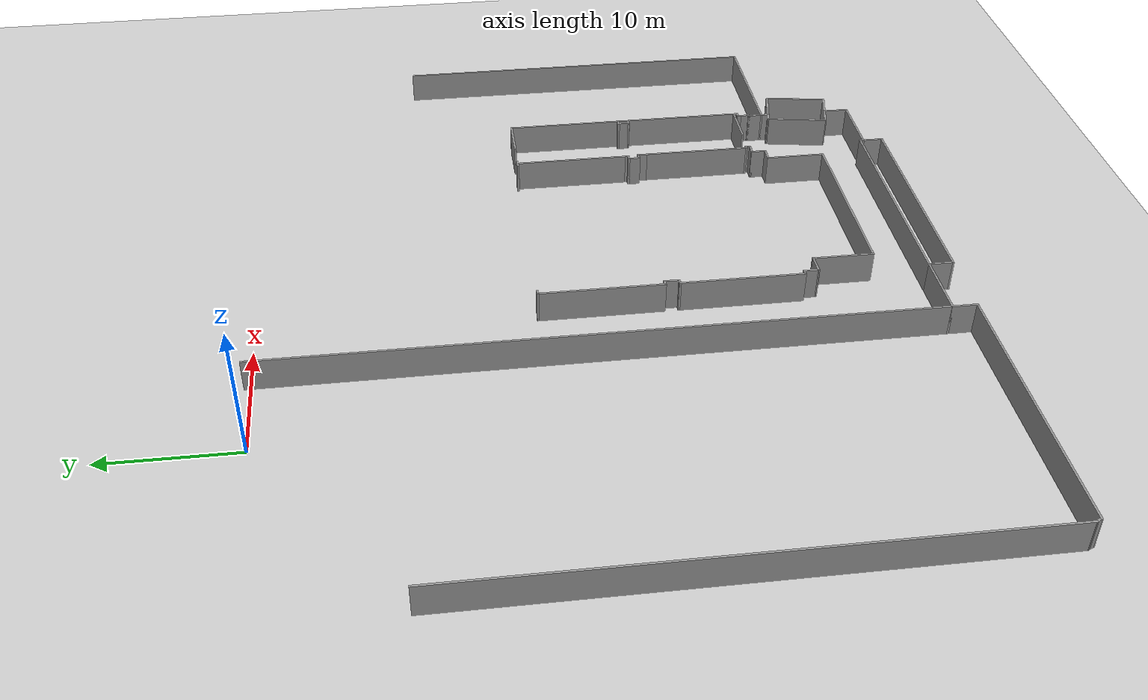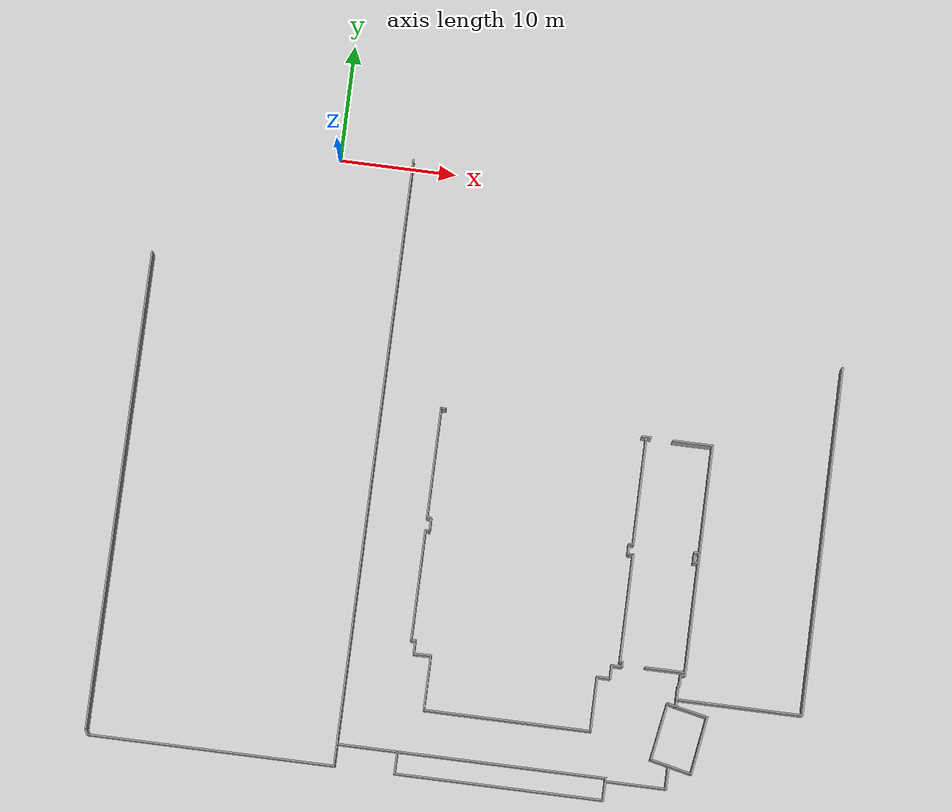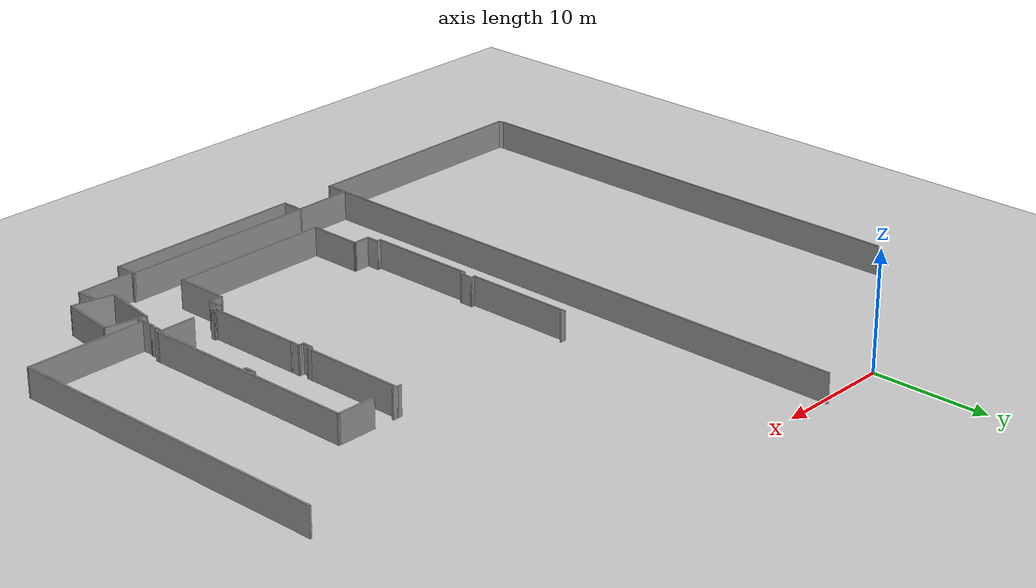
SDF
<sdf version="1.6">
 <world name="default">
  <model name="ground_plane">
   <static>1</static>
   <link name="link">
    <collision name="collision">
     <geometry><plane><normal>0 0 1</normal><size>100 100</size></plane></geometry>
     <surface><friction><ode><mu>100</mu><mu2>50</mu2></ode></friction></surface>
    </collision>
    <visual name="visual">
     <cast_shadows>0</cast_shadows>
     <geometry><plane><normal>0 0 1</normal><size>100 100</size></plane></geometry>
     <material>
      <script><uri>file://media/materials/scripts/gazebo.material</uri><name>Gazebo/Grey</name></script>
     </material>
    </visual>
   </link>
  </model>
  <model name="SEH_double_doors_open">
   <pose>0.441181 0.582592 0 0 -0 0</pose>
   <link name="Wall_0">
    <collision name="Wall_0_Collision">
     <geometry><box><size>41 0.15 2.5</size></box></geometry>
     <pose>0 0 1.25 0 -0 0</pose>
    </collision>
    <visual name="Wall_0_Visual">
     <pose>0 0 1.25 0 -0 0</pose>
     <geometry><box><size>41 0.15 2.5</size></box></geometry>
     <material>
      <script><uri>file://media/materials/scripts/gazebo.material</uri><name>Gazebo/Grey</name></script>
      <ambient>1 1 1 1</ambient>
     </material>
     <meta><layer>0</layer></meta>
    </visual>
    <pose>-15.188 -31.31 0 0 -0 1.5708</pose>
   </link>
   <link name="Wall_101">
    <collision name="Wall_101_Collision">
     <geometry><box><size>19.75 0.15 2.5</size></box></geometry>
     <pose>0 0 1.25 0 -0 0</pose>
    </collision>
    <visual name="Wall_101_Visual">
     <pose>0 0 1.25 0 -0 0</pose>
     <geometry><box><size>19.75 0.15 2.5</size></box></geometry>
     <material>
      <script><uri>file://media/materials/scripts/gazebo.material</uri><name>Gazebo/Grey</name></script>
      <ambient>1 1 1 1</ambient>
     </material>
     <meta><layer>0</layer></meta>
    </visual>
    <pose>34.1091 -31.1312 0 0 -0 1.5708</pose>
   </link>
   <link name="Wall_103">
    <collision name="Wall_103_Collision">
     <geometry><box><size>3.5 0.15 2.5</size></box></geometry>
     <pose>0 0 1.25 0 -0 0</pose>
    </collision>
    <visual name="Wall_103_Visual">
     <pose>0 0 1.25 0 -0 0</pose>
     <geometry><box><size>3.5 0.15 2.5</size></box></geometry>
     <material>
      <script><uri>file://media/materials/scripts/gazebo.material</uri><name>Gazebo/Grey</name></script>
      <ambient>1 1 1 1</ambient>
     </material>
     <meta><layer>0</layer></meta>
    </visual>
    <pose>32.4341 -21.3312 0 0 -0 3.14159</pose>
   </link>
   <link name="Wall_105">
    <collision name="Wall_105_Collision">
     <geometry><box><size>0.5 0.15 2.5</size></box></geometry>
     <pose>0 0 1.25 0 -0 0</pose>
    </collision>
    <visual name="Wall_105_Visual">
     <pose>0 0 1.25 0 -0 0</pose>
     <geometry><box><size>0.5 0.15 2.5</size></box></geometry>
     <material>
      <script><uri>file://media/materials/scripts/gazebo.material</uri><name>Gazebo/Grey</name></script>
      <ambient>1 1 1 1</ambient>
     </material>
     <meta><layer>0</layer></meta>
    </visual>
    <pose>28.6395 -21.3021 0 0 -0 3.14159</pose>
   </link>
   <link name="Wall_106">
    <collision name="Wall_106_Collision">
     <geometry><box><size>9 0.15 2.5</size></box></geometry>
     <pose>0 0 1.25 0 -0 0</pose>
    </collision>
    <visual name="Wall_106_Visual">
     <pose>0 0 1.25 0 -0 0</pose>
     <geometry><box><size>9 0.15 2.5</size></box></geometry>
     <material>
      <script><uri>file://media/materials/scripts/gazebo.material</uri><name>Gazebo/Grey</name></script>
      <ambient>1 1 1 1</ambient>
     </material>
     <meta><layer>0</layer></meta>
    </visual>
    <pose>28.4645 -25.7271 0 0 0 -1.5708</pose>
   </link>
   <link name="Wall_109">
    <collision name="Wall_109_Collision">
     <geometry><box><size>0.5 0.15 2.5</size></box></geometry>
     <pose>0 0 1.25 0 -0 0</pose>
    </collision>
    <visual name="Wall_109_Visual">
     <pose>0 0 1.25 0 -0 0</pose>
     <geometry><box><size>0.5 0.15 2.5</size></box></geometry>
     <material>
      <script><uri>file://media/materials/scripts/gazebo.material</uri><name>Gazebo/Grey</name></script>
      <ambient>1 1 1 1</ambient>
     </material>
     <meta><layer>0</layer></meta>
    </visual>
    <pose>28.4645 -30.3271 0 0 0 -1.5708</pose>
   </link>
   <link name="Wall_110">
    <collision name="Wall_110_Collision">
     <geometry><box><size>0.5 0.15 2.5</size></box></geometry>
     <pose>0 0 1.25 0 -0 0</pose>
    </collision>
    <visual name="Wall_110_Visual">
     <pose>0 0 1.25 0 -0 0</pose>
     <geometry><box><size>0.5 0.15 2.5</size></box></geometry>
     <material>
      <script><uri>file://media/materials/scripts/gazebo.material</uri><name>Gazebo/Grey</name></script>
      <ambient>1 1 1 1</ambient>
     </material>
     <meta><layer>0</layer></meta>
    </visual>
    <pose>28.2895 -30.5021 0 0 -0 3.14159</pose>
   </link>
   <link name="Wall_111">
    <collision name="Wall_111_Collision">
     <geometry><box><size>1 0.15 2.5</size></box></geometry>
     <pose>0 0 1.25 0 -0 0</pose>
    </collision>
    <visual name="Wall_111_Visual">
     <pose>0 0 1.25 0 -0 0</pose>
     <geometry><box><size>1 0.15 2.5</size></box></geometry>
     <material>
      <script><uri>file://media/materials/scripts/gazebo.material</uri><name>Gazebo/Grey</name></script>
      <ambient>1 1 1 1</ambient>
     </material>
     <meta><layer>0</layer></meta>
    </visual>
    <pose>28.1145 -30.9271 0 0 0 -1.5708</pose>
   </link>
   <link name="Wall_112">
    <collision name="Wall_112_Collision">
     <geometry><box><size>0.5 0.15 2.5</size></box></geometry>
     <pose>0 0 1.25 0 -0 0</pose>
    </collision>
    <visual name="Wall_112_Visual">
     <pose>0 0 1.25 0 -0 0</pose>
     <geometry><box><size>0.5 0.15 2.5</size></box></geometry>
     <material>
      <script><uri>file://media/materials/scripts/gazebo.material</uri><name>Gazebo/Grey</name></script>
      <ambient>1 1 1 1</ambient>
     </material>
     <meta><layer>0</layer></meta>
    </visual>
    <pose>28.2895 -31.3521 0 0 -0 0</pose>
   </link>
   <link name="Wall_113">
    <collision name="Wall_113_Collision">
     <geometry><box><size>0.25 0.15 2.5</size></box></geometry>
     <pose>0 0 1.25 0 -0 0</pose>
    </collision>
    <visual name="Wall_113_Visual">
     <pose>0 0 1.25 0 -0 0</pose>
     <geometry><box><size>0.25 0.15 2.5</size></box></geometry>
     <material>
      <script><uri>file://media/materials/scripts/gazebo.material</uri><name>Gazebo/Grey</name></script>
      <ambient>1 1 1 1</ambient>
     </material>
     <meta><layer>0</layer></meta>
    </visual>
    <pose>28.5145 -31.3521 0 0 -0 0</pose>
   </link>
   <link name="Wall_114">
    <collision name="Wall_114_Collision">
     <geometry><box><size>0.931161 0.15 2.5</size></box></geometry>
     <pose>0 0 1.25 0 -0 0</pose>
    </collision>
    <visual name="Wall_114_Visual">
     <pose>0 0 1.25 0 -0 0</pose>
     <geometry><box><size>0.931161 0.15 2.5</size></box></geometry>
     <material>
      <script><uri>file://media/materials/scripts/gazebo.material</uri><name>Gazebo/Grey</name></script>
      <ambient>1 1 1 1</ambient>
     </material>
     <meta><layer>0</layer></meta>
    </visual>
    <pose>28.5648 -31.7427 0 0 0 -1.56992</pose>
   </link>
   <link name="Wall_116">
    <collision name="Wall_116_Collision">
     <geometry><box><size>0.5 0.15 2.5</size></box></geometry>
     <pose>0 0 1.25 0 -0 0</pose>
    </collision>
    <visual name="Wall_116_Visual">
     <pose>0 0 1.25 0 -0 0</pose>
     <geometry><box><size>0.5 0.15 2.5</size></box></geometry>
     <material>
      <script><uri>file://media/materials/scripts/gazebo.material</uri><name>Gazebo/Grey</name></script>
      <ambient>1 1 1 1</ambient>
     </material>
     <meta><layer>0</layer></meta>
    </visual>
    <pose>33.8845 -30.5093 0 0 -0 3.14159</pose>
   </link>
   <link name="Wall_117">
    <collision name="Wall_117_Collision">
     <geometry><box><size>1 0.15 2.5</size></box></geometry>
     <pose>0 0 1.25 0 -0 0</pose>
    </collision>
    <visual name="Wall_117_Visual">
     <pose>0 0 1.25 0 -0 0</pose>
     <geometry><box><size>1 0.15 2.5</size></box></geometry>
     <material>
      <script><uri>file://media/materials/scripts/gazebo.material</uri><name>Gazebo/Grey</name></script>
      <ambient>1 1 1 1</ambient>
     </material>
     <meta><layer>0</layer></meta>
    </visual>
    <pose>33.7095 -30.9343 0 0 0 -1.5708</pose>
   </link>
   <link name="Wall_118">
    <collision name="Wall_118_Collision">
     <geometry><box><size>0.5 0.15 2.5</size></box></geometry>
     <pose>0 0 1.25 0 -0 0</pose>
    </collision>
    <visual name="Wall_118_Visual">
     <pose>0 0 1.25 0 -0 0</pose>
     <geometry><box><size>0.5 0.15 2.5</size></box></geometry>
     <material>
      <script><uri>file://media/materials/scripts/gazebo.material</uri><name>Gazebo/Grey</name></script>
      <ambient>1 1 1 1</ambient>
     </material>
     <meta><layer>0</layer></meta>
    </visual>
    <pose>33.8845 -31.3593 0 0 -0 0</pose>
   </link>
   <link name="Wall_120">
    <collision name="Wall_120_Collision">
     <geometry><box><size>50.25 0.15 2.5</size></box></geometry>
     <pose>0 0 1.25 0 -0 0</pose>
    </collision>
    <visual name="Wall_120_Visual">
     <pose>0 0 1.25 0 -0 0</pose>
     <geometry><box><size>50.25 0.15 2.5</size></box></geometry>
     <material>
      <script><uri>file://media/materials/scripts/gazebo.material</uri><name>Gazebo/Grey</name></script>
      <ambient>1 1 1 1</ambient>
     </material>
     <meta><layer>0</layer></meta>
    </visual>
    <pose>5.8537 -25.2205 0 0 -0 1.5708</pose>
   </link>
   <link name="Wall_156">
    <collision name="Wall_156_Collision">
     <geometry><box><size>0.5 0.15 2.5</size></box></geometry>
     <pose>0 0 1.25 0 -0 0</pose>
    </collision>
    <visual name="Wall_156_Visual">
     <pose>0 0 1.25 0 -0 0</pose>
     <geometry><box><size>0.5 0.15 2.5</size></box></geometry>
     <material>
      <script><uri>file://media/materials/scripts/gazebo.material</uri><name>Gazebo/Grey</name></script>
      <ambient>1 1 1 1</ambient>
     </material>
     <meta><layer>0</layer></meta>
    </visual>
    <pose>28.2895 -21.3021 0 0 -0 3.14159</pose>
   </link>
   <link name="Wall_160">
    <collision name="Wall_160_Collision">
     <geometry><box><size>0.5 0.15 2.5</size></box></geometry>
     <pose>0 0 1.25 0 -0 0</pose>
    </collision>
    <visual name="Wall_160_Visual">
     <pose>0 0 1.25 0 -0 0</pose>
     <geometry><box><size>0.5 0.15 2.5</size></box></geometry>
     <material>
      <script><uri>file://media/materials/scripts/gazebo.material</uri><name>Gazebo/Grey</name></script>
      <ambient>1 1 1 1</ambient>
     </material>
     <meta><layer>0</layer></meta>
    </visual>
    <pose>11.0895 -21.0521 0 0 -0 3.14159</pose>
   </link>
   <link name="Wall_161">
    <collision name="Wall_161_Collision">
     <geometry><box><size>9.5 0.15 2.5</size></box></geometry>
     <pose>0 0 1.25 0 -0 0</pose>
    </collision>
    <visual name="Wall_161_Visual">
     <pose>0 0 1.25 0 -0 0</pose>
     <geometry><box><size>9.5 0.15 2.5</size></box></geometry>
     <material>
      <script><uri>file://media/materials/scripts/gazebo.material</uri><name>Gazebo/Grey</name></script>
      <ambient>1 1 1 1</ambient>
     </material>
     <meta><layer>0</layer></meta>
    </visual>
    <pose>10.9145 -25.7271 0 0 0 -1.5708</pose>
   </link>
   <link name="Wall_163">
    <collision name="Wall_163_Collision">
     <geometry><box><size>0.5 0.15 2.5</size></box></geometry>
     <pose>0 0 1.25 0 -0 0</pose>
    </collision>
    <visual name="Wall_163_Visual">
     <pose>0 0 1.25 0 -0 0</pose>
     <geometry><box><size>0.5 0.15 2.5</size></box></geometry>
     <material>
      <script><uri>file://media/materials/scripts/gazebo.material</uri><name>Gazebo/Grey</name></script>
      <ambient>1 1 1 1</ambient>
     </material>
     <meta><layer>0</layer></meta>
    </visual>
    <pose>11.0895 -30.4021 0 0 -0 0</pose>
   </link>
   <link name="Wall_164">
    <collision name="Wall_164_Collision">
     <geometry><box><size>1.25 0.15 2.5</size></box></geometry>
     <pose>0 0 1.25 0 -0 0</pose>
    </collision>
    <visual name="Wall_164_Visual">
     <pose>0 0 1.25 0 -0 0</pose>
     <geometry><box><size>1.25 0.15 2.5</size></box></geometry>
     <material>
      <script><uri>file://media/materials/scripts/gazebo.material</uri><name>Gazebo/Grey</name></script>
      <ambient>1 1 1 1</ambient>
     </material>
     <meta><layer>0</layer></meta>
    </visual>
    <pose>11.2645 -30.9521 0 0 0 -1.5708</pose>
   </link>
   <link name="Wall_165">
    <collision name="Wall_165_Collision">
     <geometry><box><size>0.5 0.15 2.5</size></box></geometry>
     <pose>0 0 1.25 0 -0 0</pose>
    </collision>
    <visual name="Wall_165_Visual">
     <pose>0 0 1.25 0 -0 0</pose>
     <geometry><box><size>0.5 0.15 2.5</size></box></geometry>
     <material>
      <script><uri>file://media/materials/scripts/gazebo.material</uri><name>Gazebo/Grey</name></script>
      <ambient>1 1 1 1</ambient>
     </material>
     <meta><layer>0</layer></meta>
    </visual>
    <pose>11.0895 -31.5021 0 0 -0 3.14159</pose>
   </link>
   <link name="Wall_166">
    <collision name="Wall_166_Collision">
     <geometry><box><size>9.5 0.15 2.5</size></box></geometry>
     <pose>0 0 1.25 0 -0 0</pose>
    </collision>
    <visual name="Wall_166_Visual">
     <pose>0 0 1.25 0 -0 0</pose>
     <geometry><box><size>9.5 0.15 2.5</size></box></geometry>
     <material>
      <script><uri>file://media/materials/scripts/gazebo.material</uri><name>Gazebo/Grey</name></script>
      <ambient>1 1 1 1</ambient>
     </material>
     <meta><layer>0</layer></meta>
    </visual>
    <pose>10.9145 -36.1771 0 0 0 -1.5708</pose>
   </link>
   <link name="Wall_167">
    <collision name="Wall_167_Collision">
     <geometry><box><size>0.5 0.15 2.5</size></box></geometry>
     <pose>0 0 1.25 0 -0 0</pose>
    </collision>
    <visual name="Wall_167_Visual">
     <pose>0 0 1.25 0 -0 0</pose>
     <geometry><box><size>0.5 0.15 2.5</size></box></geometry>
     <material>
      <script><uri>file://media/materials/scripts/gazebo.material</uri><name>Gazebo/Grey</name></script>
      <ambient>1 1 1 1</ambient>
     </material>
     <meta><layer>0</layer></meta>
    </visual>
    <pose>11.0895 -40.8521 0 0 -0 0</pose>
   </link>
   <link name="Wall_168">
    <collision name="Wall_168_Collision">
     <geometry><box><size>1.25 0.15 2.5</size></box></geometry>
     <pose>0 0 1.25 0 -0 0</pose>
    </collision>
    <visual name="Wall_168_Visual">
     <pose>0 0 1.25 0 -0 0</pose>
     <geometry><box><size>1.25 0.15 2.5</size></box></geometry>
     <material>
      <script><uri>file://media/materials/scripts/gazebo.material</uri><name>Gazebo/Grey</name></script>
      <ambient>1 1 1 1</ambient>
     </material>
     <meta><layer>0</layer></meta>
    </visual>
    <pose>11.2645 -41.4021 0 0 0 -1.5708</pose>
   </link>
   <link name="Wall_169">
    <collision name="Wall_169_Collision">
     <geometry><box><size>1.60081 0.15 2.5</size></box></geometry>
     <pose>0 0 1.25 0 -0 0</pose>
    </collision>
    <visual name="Wall_169_Visual">
     <pose>0 0 1.25 0 -0 0</pose>
     <geometry><box><size>1.60081 0.15 2.5</size></box></geometry>
     <material>
      <script><uri>file://media/materials/scripts/gazebo.material</uri><name>Gazebo/Grey</name></script>
      <ambient>1 1 1 1</ambient>
     </material>
     <meta><layer>0</layer></meta>
    </visual>
    <pose>11.9898 -41.9427 0 0 -0 0.012986</pose>
   </link>
   <link name="Wall_185">
    <collision name="Wall_185_Collision">
     <geometry><box><size>17.75 0.15 2.5</size></box></geometry>
     <pose>0 0 1.25 0 -0 0</pose>
    </collision>
    <visual name="Wall_185_Visual">
     <pose>0 0 1.25 0 -0 0</pose>
     <geometry><box><size>17.75 0.15 2.5</size></box></geometry>
     <material>
      <script><uri>file://media/materials/scripts/gazebo.material</uri><name>Gazebo/Grey</name></script>
      <ambient>1 1 1 1</ambient>
     </material>
     <meta><layer>0</layer></meta>
    </visual>
    <pose>19.7537 -50.2705 0 0 -0 0</pose>
   </link>
   <link name="Wall_186">
    <collision name="Wall_186_Collision">
     <geometry><box><size>0.4 0.15 2.5</size></box></geometry>
     <pose>0 0 1.25 0 -0 0</pose>
    </collision>
    <visual name="Wall_186_Visual">
     <pose>0 0 1.25 0 -0 0</pose>
     <geometry><box><size>0.4 0.15 2.5</size></box></geometry>
     <material>
      <script><uri>file://media/materials/scripts/gazebo.material</uri><name>Gazebo/Grey</name></script>
      <ambient>1 1 1 1</ambient>
     </material>
     <meta><layer>0</layer></meta>
    </visual>
    <pose>28.5537 -50.3955 0 0 0 -1.5708</pose>
   </link>
   <link name="Wall_38">
    <collision name="Wall_38_Collision">
     <geometry><box><size>29.75 0.15 2.5</size></box></geometry>
     <pose>0 0 1.25 0 -0 0</pose>
    </collision>
    <visual name="Wall_38_Visual">
     <pose>0 0 1.25 0 -0 0</pose>
     <geometry><box><size>29.75 0.15 2.5</size></box></geometry>
     <material>
      <script><uri>file://media/materials/scripts/gazebo.material</uri><name>Gazebo/Grey</name></script>
      <ambient>1 1 1 1</ambient>
     </material>
     <meta><layer>0</layer></meta>
    </visual>
    <pose>44.2591 -28.1812 0 0 0 -1.5708</pose>
   </link>
   <link name="Wall_39">
    <collision name="Wall_39_Collision">
     <geometry><box><size>10.75 0.15 2.5</size></box></geometry>
     <pose>0 0 1.25 0 -0 0</pose>
    </collision>
    <visual name="Wall_39_Visual">
     <pose>0 0 1.25 0 -0 0</pose>
     <geometry><box><size>10.75 0.15 2.5</size></box></geometry>
     <material>
      <script><uri>file://media/materials/scripts/gazebo.material</uri><name>Gazebo/Grey</name></script>
      <ambient>1 1 1 1</ambient>
     </material>
     <meta><layer>0</layer></meta>
    </visual>
    <pose>38.9591 -42.9812 0 0 -0 3.14159</pose>
   </link>
   <link name="Wall_41">
    <collision name="Wall_41_Collision">
     <geometry><box><size>0.75 0.15 2.5</size></box></geometry>
     <pose>0 0 1.25 0 -0 0</pose>
    </collision>
    <visual name="Wall_41_Visual">
     <pose>0 0 1.25 0 -0 0</pose>
     <geometry><box><size>0.75 0.15 2.5</size></box></geometry>
     <material>
      <script><uri>file://media/materials/scripts/gazebo.material</uri><name>Gazebo/Grey</name></script>
      <ambient>1 1 1 1</ambient>
     </material>
     <meta><layer>0</layer></meta>
    </visual>
    <pose>33.6591 -43.2812 0 0 0 -1.5708</pose>
   </link>
   <link name="Wall_44">
    <collision name="Wall_44_Collision">
     <geometry><box><size>2.92833 0.15 2.5</size></box></geometry>
     <pose>0 0 1.25 0 -0 0</pose>
    </collision>
    <visual name="Wall_44_Visual">
     <pose>0 0 1.25 0 -0 0</pose>
     <geometry><box><size>2.92833 0.15 2.5</size></box></geometry>
     <material>
      <script><uri>file://media/materials/scripts/gazebo.material</uri><name>Gazebo/Grey</name></script>
      <ambient>1 1 1 1</ambient>
     </material>
     <meta><layer>0</layer></meta>
    </visual>
    <pose>35.0195 -43.8621 0 0 -0 2.938</pose>
   </link>
   <link name="Wall_47">
    <collision name="Wall_47_Collision">
     <geometry><box><size>2 0.15 2.5</size></box></geometry>
     <pose>0 0 1.25 0 -0 0</pose>
    </collision>
    <visual name="Wall_47_Visual">
     <pose>0 0 1.25 0 -0 0</pose>
     <geometry><box><size>2 0.15 2.5</size></box></geometry>
     <material>
      <script><uri>file://media/materials/scripts/gazebo.material</uri><name>Gazebo/Grey</name></script>
      <ambient>1 1 1 1</ambient>
     </material>
     <meta><layer>0</layer></meta>
    </visual>
    <pose>33.6537 -49.5955 0 0 0 -1.5708</pose>
   </link>
   <link name="Wall_48">
    <collision name="Wall_48_Collision">
     <geometry><box><size>5.25 0.15 2.5</size></box></geometry>
     <pose>0 0 1.25 0 -0 0</pose>
    </collision>
    <visual name="Wall_48_Visual">
     <pose>0 0 1.25 0 -0 0</pose>
     <geometry><box><size>5.25 0.15 2.5</size></box></geometry>
     <material>
      <script><uri>file://media/materials/scripts/gazebo.material</uri><name>Gazebo/Grey</name></script>
      <ambient>1 1 1 1</ambient>
     </material>
     <meta><layer>0</layer></meta>
    </visual>
    <pose>31.1037 -50.5205 0 0 -0 3.14159</pose>
   </link>
   <link name="Wall_49">
    <collision name="Wall_49_Collision">
     <geometry><box><size>1.75 0.15 2.5</size></box></geometry>
     <pose>0 0 1.25 0 -0 0</pose>
    </collision>
    <visual name="Wall_49_Visual">
     <pose>0 0 1.25 0 -0 0</pose>
     <geometry><box><size>1.75 0.15 2.5</size></box></geometry>
     <material>
      <script><uri>file://media/materials/scripts/gazebo.material</uri><name>Gazebo/Grey</name></script>
      <ambient>1 1 1 1</ambient>
     </material>
     <meta><layer>0</layer></meta>
    </visual>
    <pose>28.5537 -51.3205 0 0 0 -1.5708</pose>
   </link>
   <link name="Wall_50">
    <collision name="Wall_50_Collision">
     <geometry><box><size>17.75 0.15 2.5</size></box></geometry>
     <pose>0 0 1.25 0 -0 0</pose>
    </collision>
    <visual name="Wall_50_Visual">
     <pose>0 0 1.25 0 -0 0</pose>
     <geometry><box><size>17.75 0.15 2.5</size></box></geometry>
     <material>
      <script><uri>file://media/materials/scripts/gazebo.material</uri><name>Gazebo/Grey</name></script>
      <ambient>1 1 1 1</ambient>
     </material>
     <meta><layer>0</layer></meta>
    </visual>
    <pose>19.7537 -52.1205 0 0 -0 3.14159</pose>
   </link>
   <link name="Wall_51">
    <collision name="Wall_51_Collision">
     <geometry><box><size>2 0.15 2.5</size></box></geometry>
     <pose>0 0 1.25 0 -0 0</pose>
    </collision>
    <visual name="Wall_51_Visual">
     <pose>0 0 1.25 0 -0 0</pose>
     <geometry><box><size>2 0.15 2.5</size></box></geometry>
     <material>
      <script><uri>file://media/materials/scripts/gazebo.material</uri><name>Gazebo/Grey</name></script>
      <ambient>1 1 1 1</ambient>
     </material>
     <meta><layer>0</layer></meta>
    </visual>
    <pose>10.9537 -51.1955 0 0 -0 1.5708</pose>
   </link>
   <link name="Wall_52">
    <collision name="Wall_52_Collision">
     <geometry><box><size>5.25 0.15 2.5</size></box></geometry>
     <pose>0 0 1.25 0 -0 0</pose>
    </collision>
    <visual name="Wall_52_Visual">
     <pose>0 0 1.25 0 -0 0</pose>
     <geometry><box><size>5.25 0.15 2.5</size></box></geometry>
     <material>
      <script><uri>file://media/materials/scripts/gazebo.material</uri><name>Gazebo/Grey</name></script>
      <ambient>1 1 1 1</ambient>
     </material>
     <meta><layer>0</layer></meta>
    </visual>
    <pose>8.4037 -50.2705 0 0 -0 3.14159</pose>
   </link>
   <link name="Wall_53">
    <collision name="Wall_53_Collision">
     <geometry><box><size>2 0.15 2.5</size></box></geometry>
     <pose>0 0 1.25 0 -0 0</pose>
    </collision>
    <visual name="Wall_53_Visual">
     <pose>0 0 1.25 0 -0 0</pose>
     <geometry><box><size>2 0.15 2.5</size></box></geometry>
     <material>
      <script><uri>file://media/materials/scripts/gazebo.material</uri><name>Gazebo/Grey</name></script>
      <ambient>1 1 1 1</ambient>
     </material>
     <meta><layer>0</layer></meta>
    </visual>
    <pose>5.8537 -51.1955 0 0 0 -1.5708</pose>
   </link>
   <link name="Wall_54">
    <collision name="Wall_54_Collision">
     <geometry><box><size>21 0.15 2.5</size></box></geometry>
     <pose>0 0 1.25 0 -0 0</pose>
    </collision>
    <visual name="Wall_54_Visual">
     <pose>0 0 1.25 0 -0 0</pose>
     <geometry><box><size>21 0.15 2.5</size></box></geometry>
     <material>
      <script><uri>file://media/materials/scripts/gazebo.material</uri><name>Gazebo/Grey</name></script>
      <ambient>1 1 1 1</ambient>
     </material>
     <meta><layer>0</layer></meta>
    </visual>
    <pose>-4.5713 -52.1205 0 0 -0 3.14159</pose>
   </link>
   <link name="Wall_55">
    <collision name="Wall_55_Collision">
     <geometry><box><size>0.580586 0.15 2.5</size></box></geometry>
     <pose>0 0 1.25 0 -0 0</pose>
    </collision>
    <visual name="Wall_55_Visual">
     <pose>0 0 1.25 0 -0 0</pose>
     <geometry><box><size>0.580586 0.15 2.5</size></box></geometry>
     <material>
      <script><uri>file://media/materials/scripts/gazebo.material</uri><name>Gazebo/Grey</name></script>
      <ambient>1 1 1 1</ambient>
     </material>
     <meta><layer>0</layer></meta>
    </visual>
    <pose>-15.0922 -51.9278 0 0 -0 2.03226</pose>
   </link>
   <link name="Wall_63">
    <collision name="Wall_63_Collision">
     <geometry><box><size>0.879816 0.15 2.5</size></box></geometry>
     <pose>0 0 1.25 0 -0 0</pose>
    </collision>
    <visual name="Wall_63_Visual">
     <pose>0 0 1.25 0 -0 0</pose>
     <geometry><box><size>0.879816 0.15 2.5</size></box></geometry>
     <material>
      <script><uri>file://media/materials/scripts/gazebo.material</uri><name>Gazebo/Grey</name></script>
      <ambient>1 1 1 1</ambient>
     </material>
     <meta><layer>0</layer></meta>
    </visual>
    <pose>33.3039 -43.4973 0 0 0 -0.231943</pose>
   </link>
   <link name="Wall_67">
    <collision name="Wall_67_Collision">
     <geometry><box><size>5.05274 0.15 2.5</size></box></geometry>
     <pose>0 0 1.25 0 -0 0</pose>
    </collision>
    <visual name="Wall_67_Visual">
     <pose>0 0 1.25 0 -0 0</pose>
     <geometry><box><size>5.05274 0.15 2.5</size></box></geometry>
     <material>
      <script><uri>file://media/materials/scripts/gazebo.material</uri><name>Gazebo/Grey</name></script>
      <ambient>1 1 1 1</ambient>
     </material>
     <meta><layer>0</layer></meta>
    </visual>
    <pose>32.5371 -45.83 0 0 0 -1.73954</pose>
   </link>
   <link name="Wall_70">
    <collision name="Wall_70_Collision">
     <geometry><box><size>3.72754 0.15 2.5</size></box></geometry>
     <pose>0 0 1.25 0 -0 0</pose>
    </collision>
    <visual name="Wall_70_Visual">
     <pose>0 0 1.25 0 -0 0</pose>
     <geometry><box><size>3.72754 0.15 2.5</size></box></geometry>
     <material>
      <script><uri>file://media/materials/scripts/gazebo.material</uri><name>Gazebo/Grey</name></script>
      <ambient>1 1 1 1</ambient>
     </material>
     <meta><layer>0</layer></meta>
    </visual>
    <pose>33.8718 -48.6336 0 0 -0 2.92349</pose>
   </link>
   <link name="Wall_72">
    <collision name="Wall_72_Collision">
     <geometry><box><size>5.08683 0.15 2.5</size></box></geometry>
     <pose>0 0 1.25 0 -0 0</pose>
    </collision>
    <visual name="Wall_72_Visual">
     <pose>0 0 1.25 0 -0 0</pose>
     <geometry><box><size>5.08683 0.15 2.5</size></box></geometry>
     <material>
      <script><uri>file://media/materials/scripts/gazebo.material</uri><name>Gazebo/Grey</name></script>
      <ambient>1 1 1 1</ambient>
     </material>
     <meta><layer>0</layer></meta>
    </visual>
    <pose>35.9991 -46.5818 0 0 0 -1.72573</pose>
   </link>
   <link name="Wall_74">
    <collision name="Wall_74_Collision">
     <geometry><box><size>4.75 0.15 2.5</size></box></geometry>
     <pose>0 0 1.25 0 -0 0</pose>
    </collision>
    <visual name="Wall_74_Visual">
     <pose>0 0 1.25 0 -0 0</pose>
     <geometry><box><size>4.75 0.15 2.5</size></box></geometry>
     <material>
      <script><uri>file://media/materials/scripts/gazebo.material</uri><name>Gazebo/Grey</name></script>
      <ambient>1 1 1 1</ambient>
     </material>
     <meta><layer>0</layer></meta>
    </visual>
    <pose>12.7151 -44.2332 0 0 0 -1.5708</pose>
   </link>
   <link name="Wall_75">
    <collision name="Wall_75_Collision">
     <geometry><box><size>14.25 0.15 2.5</size></box></geometry>
     <pose>0 0 1.25 0 -0 0</pose>
    </collision>
    <visual name="Wall_75_Visual">
     <pose>0 0 1.25 0 -0 0</pose>
     <geometry><box><size>14.25 0.15 2.5</size></box></geometry>
     <material>
      <script><uri>file://media/materials/scripts/gazebo.material</uri><name>Gazebo/Grey</name></script>
      <ambient>1 1 1 1</ambient>
     </material>
     <meta><layer>0</layer></meta>
    </visual>
    <pose>19.7651 -46.5332 0 0 -0 0</pose>
   </link>
   <link name="Wall_76">
    <collision name="Wall_76_Collision">
     <geometry><box><size>4.75 0.15 2.5</size></box></geometry>
     <pose>0 0 1.25 0 -0 0</pose>
    </collision>
    <visual name="Wall_76_Visual">
     <pose>0 0 1.25 0 -0 0</pose>
     <geometry><box><size>4.75 0.15 2.5</size></box></geometry>
     <material>
      <script><uri>file://media/materials/scripts/gazebo.material</uri><name>Gazebo/Grey</name></script>
      <ambient>1 1 1 1</ambient>
     </material>
     <meta><layer>0</layer></meta>
    </visual>
    <pose>26.8151 -44.2332 0 0 -0 1.5708</pose>
   </link>
   <link name="Wall_77">
    <collision name="Wall_77_Collision">
     <geometry><box><size>1.25 0.15 2.5</size></box></geometry>
     <pose>0 0 1.25 0 -0 0</pose>
    </collision>
    <visual name="Wall_77_Visual">
     <pose>0 0 1.25 0 -0 0</pose>
     <geometry><box><size>1.25 0.15 2.5</size></box></geometry>
     <material>
      <script><uri>file://media/materials/scripts/gazebo.material</uri><name>Gazebo/Grey</name></script>
      <ambient>1 1 1 1</ambient>
     </material>
     <meta><layer>0</layer></meta>
    </visual>
    <pose>27.3651 -41.9332 0 0 -0 0</pose>
   </link>
   <link name="Wall_80">
    <collision name="Wall_80_Collision">
     <geometry><box><size>1.25 0.15 2.5</size></box></geometry>
     <pose>0 0 1.25 0 -0 0</pose>
    </collision>
    <visual name="Wall_80_Visual">
     <pose>0 0 1.25 0 -0 0</pose>
     <geometry><box><size>1.25 0.15 2.5</size></box></geometry>
     <material>
      <script><uri>file://media/materials/scripts/gazebo.material</uri><name>Gazebo/Grey</name></script>
      <ambient>1 1 1 1</ambient>
     </material>
     <meta><layer>0</layer></meta>
    </visual>
    <pose>27.9151 -41.3832 0 0 -0 1.5708</pose>
   </link>
   <link name="Wall_81">
    <collision name="Wall_81_Collision">
     <geometry><box><size>1 0.15 2.5</size></box></geometry>
     <pose>0 0 1.25 0 -0 0</pose>
    </collision>
    <visual name="Wall_81_Visual">
     <pose>0 0 1.25 0 -0 0</pose>
     <geometry><box><size>1 0.15 2.5</size></box></geometry>
     <material>
      <script><uri>file://media/materials/scripts/gazebo.material</uri><name>Gazebo/Grey</name></script>
      <ambient>1 1 1 1</ambient>
     </material>
     <meta><layer>0</layer></meta>
    </visual>
    <pose>28.3401 -40.8332 0 0 -0 0</pose>
   </link>
   <link name="Wall_82">
    <collision name="Wall_82_Collision">
     <geometry><box><size>0.5 0.15 2.5</size></box></geometry>
     <pose>0 0 1.25 0 -0 0</pose>
    </collision>
    <visual name="Wall_82_Visual">
     <pose>0 0 1.25 0 -0 0</pose>
     <geometry><box><size>0.5 0.15 2.5</size></box></geometry>
     <material>
      <script><uri>file://media/materials/scripts/gazebo.material</uri><name>Gazebo/Grey</name></script>
      <ambient>1 1 1 1</ambient>
     </material>
     <meta><layer>0</layer></meta>
    </visual>
    <pose>28.7651 -40.6582 0 0 -0 1.5708</pose>
   </link>
   <link name="Wall_83">
    <collision name="Wall_83_Collision">
     <geometry><box><size>0.25 0.15 2.5</size></box></geometry>
     <pose>0 0 1.25 0 -0 0</pose>
    </collision>
    <visual name="Wall_83_Visual">
     <pose>0 0 1.25 0 -0 0</pose>
     <geometry><box><size>0.25 0.15 2.5</size></box></geometry>
     <material>
      <script><uri>file://media/materials/scripts/gazebo.material</uri><name>Gazebo/Grey</name></script>
      <ambient>1 1 1 1</ambient>
     </material>
     <meta><layer>0</layer></meta>
    </visual>
    <pose>28.7151 -40.4832 0 0 -0 3.14159</pose>
   </link>
   <link name="Wall_84">
    <collision name="Wall_84_Collision">
     <geometry><box><size>0.25 0.15 2.5</size></box></geometry>
     <pose>0 0 1.25 0 -0 0</pose>
    </collision>
    <visual name="Wall_84_Visual">
     <pose>0 0 1.25 0 -0 0</pose>
     <geometry><box><size>0.25 0.15 2.5</size></box></geometry>
     <material>
      <script><uri>file://media/materials/scripts/gazebo.material</uri><name>Gazebo/Grey</name></script>
      <ambient>1 1 1 1</ambient>
     </material>
     <meta><layer>0</layer></meta>
    </visual>
    <pose>28.6151 -40.4832 0 0 -0 3.14159</pose>
   </link>
   <link name="Wall_85">
    <collision name="Wall_85_Collision">
     <geometry><box><size>8.5 0.15 2.5</size></box></geometry>
     <pose>0 0 1.25 0 -0 0</pose>
    </collision>
    <visual name="Wall_85_Visual">
     <pose>0 0 1.25 0 -0 0</pose>
     <geometry><box><size>8.5 0.15 2.5</size></box></geometry>
     <material>
      <script><uri>file://media/materials/scripts/gazebo.material</uri><name>Gazebo/Grey</name></script>
      <ambient>1 1 1 1</ambient>
     </material>
     <meta><layer>0</layer></meta>
    </visual>
    <pose>28.5651 -36.3082 0 0 -0 1.5708</pose>
   </link>
   <link name="Wall_90">
    <collision name="Wall_90_Collision">
     <geometry><box><size>1.25 0.15 2.5</size></box></geometry>
     <pose>0 0 1.25 0 -0 0</pose>
    </collision>
    <visual name="Wall_90_Visual">
     <pose>0 0 1.25 0 -0 0</pose>
     <geometry><box><size>1.25 0.15 2.5</size></box></geometry>
     <material>
      <script><uri>file://media/materials/scripts/gazebo.material</uri><name>Gazebo/Grey</name></script>
      <ambient>1 1 1 1</ambient>
     </material>
     <meta><layer>0</layer></meta>
    </visual>
    <pose>33.6591 -42.4312 0 0 -0 1.5708</pose>
   </link>
   <link name="Wall_91">
    <collision name="Wall_91_Collision">
     <geometry><box><size>0.25 0.15 2.5</size></box></geometry>
     <pose>0 0 1.25 0 -0 0</pose>
    </collision>
    <visual name="Wall_91_Visual">
     <pose>0 0 1.25 0 -0 0</pose>
     <geometry><box><size>0.25 0.15 2.5</size></box></geometry>
     <material>
      <script><uri>file://media/materials/scripts/gazebo.material</uri><name>Gazebo/Grey</name></script>
      <ambient>1 1 1 1</ambient>
     </material>
     <meta><layer>0</layer></meta>
    </visual>
    <pose>33.7091 -41.8812 0 0 -0 0</pose>
   </link>
   <link name="Wall_92">
    <collision name="Wall_92_Collision">
     <geometry><box><size>0.75 0.15 2.5</size></box></geometry>
     <pose>0 0 1.25 0 -0 0</pose>
    </collision>
    <visual name="Wall_92_Visual">
     <pose>0 0 1.25 0 -0 0</pose>
     <geometry><box><size>0.75 0.15 2.5</size></box></geometry>
     <material>
      <script><uri>file://media/materials/scripts/gazebo.material</uri><name>Gazebo/Grey</name></script>
      <ambient>1 1 1 1</ambient>
     </material>
     <meta><layer>0</layer></meta>
    </visual>
    <pose>33.7591 -41.5812 0 0 -0 1.5708</pose>
   </link>
   <link name="Wall_94">
    <collision name="Wall_94_Collision">
     <geometry><box><size>0.5 0.15 2.5</size></box></geometry>
     <pose>0 0 1.25 0 -0 0</pose>
    </collision>
    <visual name="Wall_94_Visual">
     <pose>0 0 1.25 0 -0 0</pose>
     <geometry><box><size>0.5 0.15 2.5</size></box></geometry>
     <material>
      <script><uri>file://media/materials/scripts/gazebo.material</uri><name>Gazebo/Grey</name></script>
      <ambient>1 1 1 1</ambient>
     </material>
     <meta><layer>0</layer></meta>
    </visual>
    <pose>33.7591 -41.1062 0 0 -0 1.5708</pose>
   </link>
   <link name="Wall_95">
    <collision name="Wall_95_Collision">
     <geometry><box><size>0.5 0.15 2.5</size></box></geometry>
     <pose>0 0 1.25 0 -0 0</pose>
    </collision>
    <visual name="Wall_95_Visual">
     <pose>0 0 1.25 0 -0 0</pose>
     <geometry><box><size>0.5 0.15 2.5</size></box></geometry>
     <material>
      <script><uri>file://media/materials/scripts/gazebo.material</uri><name>Gazebo/Grey</name></script>
      <ambient>1 1 1 1</ambient>
     </material>
     <meta><layer>0</layer></meta>
    </visual>
    <pose>33.9341 -40.9312 0 0 -0 0</pose>
   </link>
   <link name="Wall_99">
    <collision name="Wall_99_Collision">
     <geometry><box><size>3.5 0.15 2.5</size></box></geometry>
     <pose>0 0 1.25 0 -0 0</pose>
    </collision>
    <visual name="Wall_99_Visual">
     <pose>0 0 1.25 0 -0 0</pose>
     <geometry><box><size>3.5 0.15 2.5</size></box></geometry>
     <material>
      <script><uri>file://media/materials/scripts/gazebo.material</uri><name>Gazebo/Grey</name></script>
      <ambient>1 1 1 1</ambient>
     </material>
     <meta><layer>0</layer></meta>
    </visual>
    <pose>32.4365 -40.6507 0 0 -0 0</pose>
   </link>
   <static>1</static>
  </model>
 </world>
</sdf>
